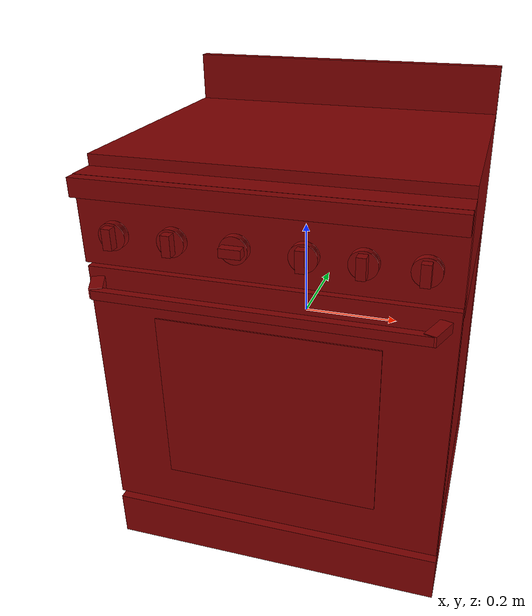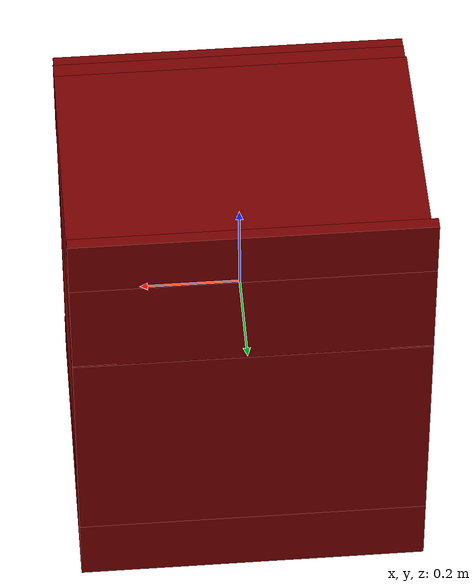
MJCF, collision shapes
<?xml version='1.0' encoding='UTF-8'?>
<mujoco model="model">
  <option timestep="0.002" gravity="0.0 0.0 -9.81"/>
  <compiler angle="radian"/>
  <asset>
    <mesh file="visuals/door.obj" name="door_vis"/>
    <mesh file="visuals/door_Clear.obj" name="door_Clear_vis"/>
    <mesh file="visuals/knob_front_left.obj" name="knob_front_left_vis"/>
    <mesh file="visuals/knob_front_right.obj" name="knob_front_right_vis"/>
    <mesh file="visuals/knob_rear_left.obj" name="knob_rear_left_vis"/>
    <mesh file="visuals/knob_rear_right.obj" name="knob_rear_right_vis"/>
    <mesh file="visuals/knob_temp.obj" name="knob_temp_vis"/>
    <mesh file="visuals/knob_time.obj" name="knob_time_vis"/>
    <mesh file="visuals/rack0.obj" name="rack0_vis"/>
    <mesh file="visuals/rack1.obj" name="rack1_vis"/>
    <mesh file="visuals/Body001.obj" name="Body001_vis"/>
    <texture file="visuals/T_BC001.png" name="Body001_material" type="2d"/>
    <material name="Body001_material" rgba="1 1 1 1.0" texture="Body001_material" shininess="0.4472135901451111" specular="2"/>
    <texture file="visuals/T_BC001.png" name="door_material" type="2d"/>
    <material name="door_material" rgba="1 1 1 1.0" texture="door_material" shininess="0.4472135901451111" specular="2"/>
    <texture file="visuals/T_BC001.png" name="door_Clear_material" type="2d"/>
    <material name="door_Clear_material" rgba="1 1 1 0.800000011920929" texture="door_Clear_material" shininess="0.5" specular="0.3103448502657381"/>
    <texture file="visuals/T_BC001.png" name="knob_front_left_material" type="2d"/>
    <material name="knob_front_left_material" rgba="1 1 1 1.0" texture="knob_front_left_material" shininess="0.4472135901451111" specular="0.3103448502657381"/>
    <texture file="visuals/T_BC001.png" name="knob_front_right_material" type="2d"/>
    <material name="knob_front_right_material" rgba="1 1 1 1.0" texture="knob_front_right_material" shininess="0.4472135901451111" specular="0.3103448502657381"/>
    <texture file="visuals/T_BC001.png" name="knob_rear_left_material" type="2d"/>
    <material name="knob_rear_left_material" rgba="1 1 1 1.0" texture="knob_rear_left_material" shininess="0.4472135901451111" specular="0.3103448502657381"/>
    <texture file="visuals/T_BC001.png" name="knob_rear_right_material" type="2d"/>
    <material name="knob_rear_right_material" rgba="1 1 1 1.0" texture="knob_rear_right_material" shininess="0.4472135901451111" specular="0.3103448502657381"/>
    <texture file="visuals/T_BC001.png" name="knob_temp_material" type="2d"/>
    <material name="knob_temp_material" rgba="1 1 1 1.0" texture="knob_temp_material" shininess="0.4472135901451111" specular="0.3103448502657381"/>
    <texture file="visuals/T_BC001.png" name="knob_time_material" type="2d"/>
    <material name="knob_time_material" rgba="1 1 1 1.0" texture="knob_time_material" shininess="0.4472135901451111" specular="0.3103448502657381"/>
    <texture file="visuals/T_BC001.png" name="rack0_material" type="2d"/>
    <material name="rack0_material" rgba="1 1 1 1.0" texture="rack0_material" shininess="0.4472135901451111" specular="0.3103448502657381"/>
    <texture file="visuals/T_BC001.png" name="rack1_material" type="2d"/>
    <material name="rack1_material" rgba="1 1 1 1.0" texture="rack1_material" shininess="0.4472135901451111" specular="4"/>
  </asset>
  <default>
    <default class="visual">
      <geom conaffinity="0" contype="0" group="1" type="mesh"/>
    </default>
    <default class="collision">
      <geom group="0" rgba="0.5 0 0 0.5"/>
    </default>
    <default class="spawn">
      <geom group="0" rgba="1 1 1 0.5" contype="0" conaffinity="0"/>
      <site group="0" rgba="1 1 1 0.5"/>
    </default>
    <default class="region">
      <geom group="1" conaffinity="0" contype="0" rgba="0 1 0 0"/>
    </default>
  </default>
  <worldbody>
    <body>
      <body name="object">
        <geom mesh="Body001_vis" type="mesh" solimp="0.998 0.998 0.001" solref="0.001 1" friction="0.95 0.3 0.1" class="visual" material="Body001_material"/>
        <geom type="box" pos="-0.00014746803208254278 0.05135912820696831 -0.4064618647098541" size="0.35012269020080566 0.28487202525138855 0.07652352750301361" quat="1.0 0.0 0.0 0.0" class="collision"/>
        <geom type="box" pos="-0.00014746803208254278 0.2861902415752411 -0.09431956708431244" size="0.34993186593055725 0.050824426114559174 0.24223263561725616" quat="1.0 0.0 0.0 0.0" class="collision"/>
        <geom type="box" pos="-7.107397686922923e-05 0.055293865501880646 0.26314276456832886" size="0.3502548038959503 0.2807837128639221 0.11938722431659698" quat="1.0 0.0 0.0 0.0" class="collision"/>
        <geom type="box" pos="-7.110350270522758e-05 -0.25239092111587524 0.27547764778137207" size="0.35025525093078613 0.02705969661474228 0.08506572991609573" quat="1.0 0.0 0.0 0.0" class="collision"/>
        <geom type="box" pos="7.107482815627009e-05 0.3256027102470398 0.4231830835342407" size="0.3502567410469055 0.011324520222842693 0.06091209873557091" quat="1.0 0.0 0.0 0.0" class="collision"/>
        <geom type="box" pos="-0.0001474668097216636 -0.27820074558258057 0.34203529357910156" size="0.3494274616241455 0.022705255076289177 0.018246155232191086" quat="1.0 0.0 0.0 0.0" class="collision"/>
        <geom type="box" pos="-0.0001474727177992463 -0.25263890624046326 -0.4327547252178192" size="0.35015949606895447 0.027300572022795677 0.049705494195222855" quat="1.0 0.0 0.0 0.0" class="collision"/>
        <geom type="box" pos="-0.30808332562446594 0.05135912075638771 -0.09207580983638763" size="0.04222295060753822 0.2848813831806183 0.24247388541698456" quat="1.0 0.0 0.0 0.0" class="collision"/>
        <geom type="box" pos="0.3076491057872772 0.05135912075638771 -0.09207580983638763" size="0.042015187442302704 0.28488102555274963 0.24247363209724426" quat="1.0 0.0 0.0 0.0" class="collision"/>
        <body name="door">
          <joint axis="1.0 0.0 0.0" pos="-7.106114935595542e-05 -0.28316956758499146 -0.37431401014328003" limited="true" name="door_joint" range="0.0 1.5707963267948966" type="hinge" damping="1" frictionloss="1" armature=".01" stiffness="0.05"/>
          <geom mesh="door_vis" type="mesh" solimp="0.998 0.998 0.001" solref="0.001 1" friction="0.95 0.3 0.1" class="visual" material="door_material"/>
          <geom class="collision" type="box" pos="-0.00014746803208254278 -0.2586946487426758 -0.09400005638599396" size="0.3494284451007843 0.016997987404465675 0.27487221360206604" quat="1.0 0.0 0.0 0.0" name="door_main"/>
          <geom class="collision" type="box" pos="-1.4901161193847656e-08 -0.27844947576522827 -0.09371771663427353" size="0.21943971514701843 0.001523040933534503 0.18236695230007172" quat="1.0 0.0 0.0 0.0"/>
          <geom type="box" pos="-0.3170848488807678 -0.3034972548484802 0.1535831093788147" size="0.012553542852401733 0.027932176366448402 0.009833773598074913" quat="1.9360556962055853e-06 0.21596013009548187 -0.9764021635055542 4.28215685133182e-07" class="collision"/>
          <geom type="box" pos="0.3143838047981262 -0.30614203214645386 0.15364345908164978" size="0.011710848659276962 0.030119679868221283 0.009894125163555145" quat="1.9520919067872455e-06 -0.17544248700141907 -0.9844896793365479 -3.478755843389081e-07" class="collision"/>
          <geom class="collision" type="box" pos="0.0003963177732657641 -0.32848870754241943 0.1529311239719391" size="0.31237438321113586 0.008542894385755062 0.009181818924844265" quat="1.0 0.0 0.0 0.0" name="door_handle_main"/>
          <body name="door_Clear">
            <geom mesh="door_Clear_vis" type="mesh" solimp="0.998 0.998 0.001" solref="0.001 1" friction="0.95 0.3 0.1" class="visual" material="door_Clear_material"/>
            <geom type="box" pos="-1.4901161193847656e-08 -0.27844947576522827 -0.09371771663427353" size="0.21943971514701843 0.001523040933534503 0.18236695230007172" quat="1.0 0.0 0.0 0.0" class="collision"/>
          </body>
        </body>
        <body name="knob_front_left">
          <joint axis="0.0 -1.0 0.0" pos="-0.2754005193710327 -0.2984381914138794 0.2563842535018921" limited="true" name="knob_front_left_joint" range="0.0 3.3161255787892263" type="hinge" damping="0.05" frictionloss="0.75" armature="1"/>
          <geom mesh="knob_front_left_vis" type="mesh" solimp="0.998 0.998 0.001" solref="0.001 1" friction="0.95 0.3 0.1" class="visual" material="knob_front_left_material"/>
          <geom type="cylinder" pos="-0.2757011950016022 -0.2924758195877075 0.2560778260231018" size="0.026179928332567215 0.0076294029131531715" quat="0.7071067094802856 0.70710688829422 0.0 0.0" class="collision" friction="100 0.5 0.01"/>
          <geom type="box" pos="-0.27576297521591187 -0.30898553133010864 0.25702792406082153" size="0.008614372462034225 0.009282330982387066 0.020264428108930588" quat="1.0 0.0 0.0 0.0" class="collision" name="knob_front_left_main" friction="100 0.5 0.01"/>
        </body>
        <body name="knob_front_right">
          <joint axis="0.0 -1.0 0.0" pos="0.28673580288887024 -0.2984381914138794 0.2563842535018921" limited="true" name="knob_front_right_joint" range="0.0 3.368485456349056" type="hinge" damping="0.05" frictionloss="0.75" armature="1"/>
          <geom mesh="knob_front_right_vis" type="mesh" solimp="0.998 0.998 0.001" solref="0.001 1" friction="0.95 0.3 0.1" class="visual" material="knob_front_right_material"/>
          <geom type="box" pos="0.28748977184295654 -0.30898553133010864 0.25702792406082153" size="0.008614372462034225 0.007597616408020258 0.020264383405447006" quat="1.0 0.0 0.0 0.0" class="collision" name="knob_front_right_main" friction="100 0.5 0.01"/>
          <geom type="cylinder" pos="0.287524938583374 -0.2924758195877075 0.2560778260231018" size="0.026179928332567215 0.0076294029131531715" quat="0.7071067094802856 0.70710688829422 0.0 0.0" class="collision" friction="100 0.5 0.01"/>
        </body>
        <body name="knob_rear_left">
          <joint axis="0.0 -1.0 0.0" pos="-0.1616622656583786 -0.2984381914138794 0.2563842535018921" limited="true" name="knob_rear_left_joint" range="0.0 3.3161255787892263" type="hinge" damping="0.05" frictionloss="0.75" armature="1"/>
          <geom mesh="knob_rear_left_vis" type="mesh" solimp="0.998 0.998 0.001" solref="0.001 1" friction="0.95 0.3 0.1" class="visual" material="knob_rear_left_material"/>
          <geom type="cylinder" pos="-0.1614503115415573 -0.2924758195877075 0.2560778260231018" size="0.026179928332567215 0.0076294029131531715" quat="0.7071067094802856 0.70710688829422 0.0 0.0" class="collision" friction="100 0.5 0.01"/>
          <geom type="box" pos="-0.1615120768547058 -0.30898553133010864 0.25702792406082153" size="0.008614372462034225 0.00928231980651617 0.020264428108930588" quat="1.0 0.0 0.0 0.0" class="collision" name="knob_rear_left_main" friction="100 0.5 0.01"/>
        </body>
        <body name="knob_rear_right">
          <joint axis="0.0 -1.0 0.0" pos="0.18417790532112122 -0.2984381914138794 0.2563842535018921" limited="true" name="knob_rear_right_joint" range="0.0 3.4033920413889422" type="hinge" damping="0.05" frictionloss="0.75" armature="1"/>
          <geom mesh="knob_rear_right_vis" type="mesh" solimp="0.998 0.998 0.001" solref="0.001 1" friction="0.95 0.3 0.1" class="visual" material="knob_rear_right_material"/>
          <geom type="cylinder" pos="0.18332833051681519 -0.2924758195877075 0.2560778260231018" size="0.026179928332567215 0.0076294029131531715" quat="0.7071067094802856 0.70710688829422 0.0 0.0" class="collision" friction="100 0.5 0.01"/>
          <geom type="box" pos="0.1832665652036667 -0.30898553133010864 0.25702792406082153" size="0.008614372462034225 0.009282308630645275 0.020264428108930588" quat="1.0 0.0 0.0 0.0" class="collision" name="knob_rear_right_main" friction="100 0.5 0.01"/>
        </body>
        <body name="knob_temp">
          <joint axis="0.0 1.0 0.0" pos="0.08086814731359482 -0.2984381914138794 0.2563842535018921" limited="true" name="knob_temp_joint" range="0.0 5.585053606381854" type="hinge" damping="0.05" armature="1" frictionloss="0.75"/>
          <geom mesh="knob_temp_vis" type="mesh" solimp="0.998 0.998 0.001" solref="0.001 1" friction="0.95 0.3 0.1" class="visual" material="knob_temp_material"/>
          <geom class="collision" type="box" pos="0.0804431289434433 -0.30898553133010864 0.25702792406082153" size="0.008614372462034225 0.009282286278903484 0.020264428108930588" quat="1.0 0.0 0.0 0.0" name="knob_temp_main" friction="100 0.5 0.01"/>
          <geom type="cylinder" pos="0.0805048942565918 -0.2924758195877075 0.2560778260231018" size="0.026179928332567215 0.0076294029131531715" quat="0.7071067094802856 0.70710688829422 0.0 0.0" class="collision" friction="100 0.5 0.01"/>
        </body>
        <body name="knob_time">
          <joint axis="0.0 1.0 0.0" pos="-0.04333847016096115 -0.2984381914138794 0.2563842535018921" limited="true" name="knob_time_joint" range="0.0 5.235987755982989" type="hinge" damping="0.05" armature="1" frictionloss="0.75"/>
          <geom mesh="knob_time_vis" type="mesh" solimp="0.998 0.998 0.001" solref="0.001 1" friction="0.95 0.3 0.1" class="visual" material="knob_time_material"/>
          <geom class="collision" type="box" pos="-0.043551236391067505 -0.30898553133010864 0.25702792406082153" size="0.020264392718672752 0.009282275103032589 0.008614293299615383" quat="1.0 0.0 0.0 0.0" name="knob_time_main" friction="100 0.5 0.01"/>
          <geom type="cylinder" pos="-0.043489471077919006 -0.2924758195877075 0.2560778260231018" size="0.026179928332567215 0.0076294029131531715" quat="0.7071067094802856 0.70710688829422 0.0 0.0" class="collision" friction="100 0.5 0.01"/>
        </body>
        <body name="rack0">
          <geom class="region" name="reg_rack0" type="box" pos="-0.0004057884216308594 0.007976025342941284 -0.2205004170536995" size="0.22123434937000275 0.13924304938316345 0.043896442115306855"/>
          <joint axis="0.0 -1.0 0.0" pos="-7.09610030753538e-05 0.008929502218961716 -0.2592981457710266" limited="true" name="rack0_joint" range="0.0 0.24" type="slide" damping="1" frictionloss="1" armature=".01" stiffness="0.05"/>
          <geom mesh="rack0_vis" type="mesh" solimp="0.998 0.998 0.001" solref="0.001 1" friction="0.95 0.3 0.1" class="visual" material="rack0_material"/>
          <geom type="box" pos="-0.0005965303280390799 0.007976021617650986 -0.2658674418926239" size="0.2219635546207428 0.13824304938316345 0.001582232303917408" quat="1.0 0.0 0.0 0.0" class="collision"/>
          <geom type="box" pos="-0.23054850101470947 0.007976021617650986 -0.2586822211742401" size="0.01061464473605156 0.13824304938316345 0.0015822324203327298" quat="0.9375162124633789 2.0307036545737554e-16 0.34794163703918457 -1.1909536468124315e-08" class="collision"/>
          <geom type="box" pos="-0.24504037201404572 0.007976021617650986 -0.25319212675094604" size="0.008954621851444244 0.13824304938316345 0.001591137726791203" quat="1.0 0.0 0.0 0.0" class="collision"/>
          <geom type="box" pos="0.23054850101470947 0.007976021617650986 -0.2586822211742401" size="0.01061464473605156 0.13824304938316345 0.0015822321875020862" quat="0.9375162124633789 -1.085051852410719e-15 -0.3479416072368622 1.1909533803589056e-08" class="collision"/>
          <geom type="box" pos="0.24504037201404572 0.007976021617650986 -0.25319212675094604" size="0.008954621851444244 0.13824304938316345 0.001591137726791203" quat="1.0 0.0 0.0 0.0" class="collision"/>
        </body>
        <body name="rack1">
          <geom class="region" name="reg_rack1" type="box" pos="-0.0004057884216308594 0.007976025342941284 -0.01641979068517685" size="0.22123434937000275 0.13924304938316345 0.15544060415029526"/>
          <joint axis="0.0 -1.0 0.0" pos="-7.09610030753538e-05 0.008929535746574402 -0.16779346764087677" limited="true" name="rack1_joint" range="0.0 0.24" type="slide" damping="1" frictionloss="1" armature=".01" stiffness="0.05"/>
          <geom mesh="rack1_vis" type="mesh" solimp="0.998 0.998 0.001" solref="0.001 1" friction="0.95 0.3 0.1" class="visual" material="rack1_material"/>
          <geom type="box" pos="-0.00035118949017487466 0.007976021617650986 -0.1738789975643158" size="0.22220894694328308 0.13824304938316345 0.0018925038166344166" quat="1.0 0.0 0.0 0.0" class="collision"/>
          <geom type="box" pos="-0.23054850101470947 0.007976021617650986 -0.16666823625564575" size="0.01061464473605156 0.13824304938316345 0.0015822324203327298" quat="0.9375162124633789 2.0307036545737554e-16 0.34794163703918457 -1.1909536468124315e-08" class="collision"/>
          <geom type="box" pos="-0.24504037201404572 0.007976021617650986 -0.16117814183235168" size="0.008954621851444244 0.13824304938316345 0.001591137726791203" quat="1.0 0.0 0.0 0.0" class="collision"/>
          <geom type="box" pos="0.23054850101470947 0.007976021617650986 -0.16666823625564575" size="0.01061464473605156 0.13824304938316345 0.0015822321875020862" quat="0.9375162124633789 -1.085051852410719e-15 -0.3479416072368622 1.1909533803589056e-08" class="collision"/>
          <geom type="box" pos="0.24504037201404572 0.007976021617650986 -0.16117814183235168" size="0.008954621851444244 0.13824304938316345 0.001591137726791203" quat="1.0 0.0 0.0 0.0" class="collision"/>
        </body>
        <geom class="region" name="reg_int" type="box" pos="-0.000960126519203186 0.005840718746185303 -0.0958622619509697" size="0.2604704180955887 0.22722781991958618 0.23173209077119827"/>
        <site type="cylinder" rgba="0.3 0.4 1 0.5" size="0.04274687170982361 0.00570576312020421" pos="0.15967822074890137 0.17787054181098938 0.3659241199493408" name="burner_on_rear_right"/>
        <site type="cylinder" rgba="0.3 0.4 1 0.5" size="0.04606814682483673 0.005705761723220348" pos="0.1597423553466797 -0.08112290501594543 0.3659241199493408" name="burner_on_front_right"/>
        <site type="cylinder" rgba="0.3 0.4 1 0.5" size="0.037669356912374496 0.00570576312020421" pos="-0.16014519333839417 -0.08022329211235046 0.3659241199493408" name="burner_on_front_left"/>
        <site type="cylinder" rgba="0.3 0.4 1 0.5" size="0.03731134906411171 0.00570576312020421" pos="-0.16021078824996948 0.1778567135334015 0.3659241199493408" name="burner_on_rear_left"/>
        <site type="cylinder" rgba="0.5 0 0 0" size="0.04274687170982361 4.998798613087274e-05" pos="0.15967822074890137 0.17787054181098938 0.3825690448284149" name="burner_on_rear_right_place_site"/>
        <site type="cylinder" rgba="0.5 0 0 0" size="0.04606814682483673 4.998797885491513e-05" pos="0.1597423553466797 -0.08112290501594543 0.3825690448284149" name="burner_on_front_right_place_site"/>
        <site type="cylinder" rgba="0.5 0 0 0" size="0.037669356912374496 4.998798976885155e-05" pos="-0.16014519333839417 -0.08022329211235046 0.3825690448284149" name="burner_on_front_left_place_site"/>
        <site type="cylinder" rgba="0.5 0 0 0" size="0.03731134906411171 4.998798613087274e-05" pos="-0.16021078824996948 0.1778567135334015 0.3825690448284149" name="burner_on_rear_left_place_site"/>
        <geom class="region" name="reg_main" type="box" pos="-7.10710883140564e-05 0.028506413102149963 -0.06109040975570679" size="0.3512565324306488 0.3099439272880554 0.4240033755302429"/>
      </body>
    </body>
  </worldbody>
  <actuator>
    <motor name="door_joint_actuator" joint="door_joint" gear="50"/>
    <motor name="knob_front_left_joint_actuator" joint="knob_front_left_joint" gear="50"/>
    <motor name="knob_front_right_joint_actuator" joint="knob_front_right_joint" gear="50"/>
    <motor name="knob_rear_left_joint_actuator" joint="knob_rear_left_joint" gear="50"/>
    <motor name="knob_rear_right_joint_actuator" joint="knob_rear_right_joint" gear="50"/>
    <motor name="knob_temp_joint_actuator" joint="knob_temp_joint" gear="50"/>
    <motor name="knob_time_joint_actuator" joint="knob_time_joint" gear="50"/>
    <motor name="rack0_joint_actuator" joint="rack0_joint" gear="50"/>
    <motor name="rack1_joint_actuator" joint="rack1_joint" gear="50"/>
  </actuator>
</mujoco>
